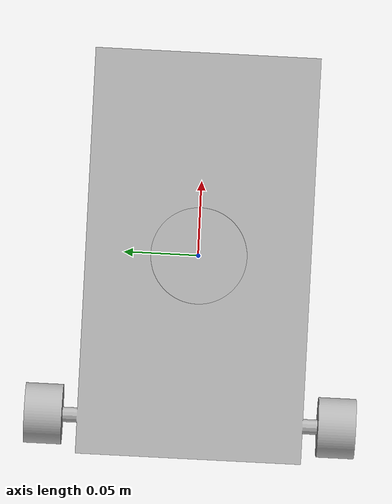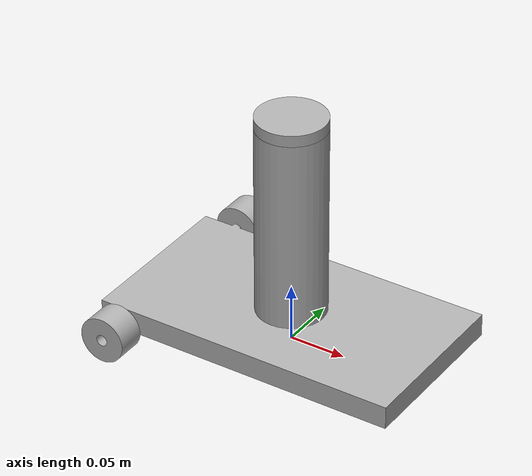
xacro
<?xml version="1.0" ?>
<robot name="singbot" xmlns:xacro="http://www.ros.org/wiki/xacro">

<xacro:include filename="$(find singbot_description)/urdf/materials.xacro" />
<xacro:include filename="$(find singbot_description)/urdf/singbot.trans" />
<xacro:include filename="$(find singbot_description)/urdf/singbot.gazebo" />
<link name="base_link">
  <inertial>
    <origin xyz="-0.00013371226325704471 0.0 0.055336504479511175" rpy="0 0 0"/>
    <mass value="10.144040607759354"/>
    <inertia ixx="0.043536" iyy="0.070312" izz="0.052476" ixy="0.0" iyz="0.0" ixz="-4.8e-05"/>
  </inertial>
  <visual>
    <origin xyz="0 0 0" rpy="0 0 0"/>
    <geometry>
      <mesh filename="package://singbot_description/meshes/base_link.stl" scale="0.001 0.001 0.001"/>
    </geometry>
    <material name="silver"/>
  </visual>
  <collision>
    <origin xyz="0 0 0" rpy="0 0 0"/>
    <geometry>
      <mesh filename="package://singbot_description/meshes/base_link.stl" scale="0.001 0.001 0.001"/>
    </geometry>
  </collision>
</link>

<link name="right_wheel_1">
  <inertial>
    <origin xyz="-3.4888758548845544e-14 -0.012499999999999997 3.469446951953614e-18" rpy="0 0 0"/>
    <mass value="0.23120158435012308"/>
    <inertia ixx="3.7e-05" iyy="4.9e-05" izz="3.7e-05" ixy="0.0" iyz="-0.0" ixz="-0.0"/>
  </inertial>
  <visual>
    <origin xyz="0.11 0.085 -0.02" rpy="0 0 0"/>
    <geometry>
      <mesh filename="package://singbot_description/meshes/right_wheel_1.stl" scale="0.001 0.001 0.001"/>
    </geometry>
    <material name="silver"/>
  </visual>
  <collision>
    <origin xyz="0.11 0.085 -0.02" rpy="0 0 0"/>
    <geometry>
      <mesh filename="package://singbot_description/meshes/right_wheel_1.stl" scale="0.001 0.001 0.001"/>
    </geometry>
  </collision>
</link>

<link name="left_wheel_1">
  <inertial>
    <origin xyz="-3.4888758548845544e-14 0.012499999999999997 3.469446951953614e-18" rpy="0 0 0"/>
    <mass value="0.23120158435012308"/>
    <inertia ixx="3.7e-05" iyy="4.9e-05" izz="3.7e-05" ixy="-0.0" iyz="0.0" ixz="-0.0"/>
  </inertial>
  <visual>
    <origin xyz="0.11 -0.085 -0.02" rpy="0 0 0"/>
    <geometry>
      <mesh filename="package://singbot_description/meshes/left_wheel_1.stl" scale="0.001 0.001 0.001"/>
    </geometry>
    <material name="silver"/>
  </visual>
  <collision>
    <origin xyz="0.11 -0.085 -0.02" rpy="0 0 0"/>
    <geometry>
      <mesh filename="package://singbot_description/meshes/left_wheel_1.stl" scale="0.001 0.001 0.001"/>
    </geometry>
  </collision>
</link>

<link name="caster_1">
  <inertial>
    <origin xyz="-0.035 -9.27846377390412e-18 -0.0036755953484190335" rpy="0 0 0"/>
    <mass value="0.04508634682126225"/>
    <inertia ixx="3e-06" iyy="3e-06" izz="5e-06" ixy="-0.0" iyz="-0.0" ixz="-0.0"/>
  </inertial>
  <visual>
    <origin xyz="-0.135 -0.0 -0.01" rpy="0 0 0"/>
    <geometry>
      <mesh filename="package://singbot_description/meshes/caster_1.stl" scale="0.001 0.001 0.001"/>
    </geometry>
    <material name="silver"/>
  </visual>
  <collision>
    <origin xyz="-0.135 -0.0 -0.01" rpy="0 0 0"/>
    <geometry>
      <mesh filename="package://singbot_description/meshes/caster_1.stl" scale="0.001 0.001 0.001"/>
    </geometry>
  </collision>
</link>

<link name="lidar_1">
  <inertial>
    <origin xyz="5.026061718855929e-18 0.0 0.004999999999999977" rpy="0 0 0"/>
    <mass value="0.22195352097611878"/>
    <inertia ixx="5.2e-05" iyy="5.2e-05" izz="0.0001" ixy="0.0" iyz="0.0" ixz="0.0"/>
  </inertial>
  <visual>
    <origin xyz="-0.0 -0.0 -0.2" rpy="0 0 0"/>
    <geometry>
      <mesh filename="package://singbot_description/meshes/lidar_1.stl" scale="0.001 0.001 0.001"/>
    </geometry>
    <material name="silver"/>
  </visual>
  <collision>
    <origin xyz="-0.0 -0.0 -0.2" rpy="0 0 0"/>
    <geometry>
      <mesh filename="package://singbot_description/meshes/lidar_1.stl" scale="0.001 0.001 0.001"/>
    </geometry>
  </collision>
</link>

<joint name="Rev1" type="continuous">
  <origin xyz="-0.11 -0.085 0.02" rpy="0 0 0"/>
  <parent link="base_link"/>
  <child link="right_wheel_1"/>
  <axis xyz="0.0 -1.0 0.0"/>
</joint>

<joint name="Rev2" type="continuous">
  <origin xyz="-0.11 0.085 0.02" rpy="0 0 0"/>
  <parent link="base_link"/>
  <child link="left_wheel_1"/>
  <axis xyz="0.0 1.0 0.0"/>
</joint>

<joint name="Rigid3" type="fixed">
  <origin xyz="0.135 0.0 0.01" rpy="0 0 0"/>
  <parent link="base_link"/>
  <child link="caster_1"/>
</joint>

<joint name="Rigid4" type="fixed">
  <origin xyz="0.0 0.0 0.2" rpy="0 0 3.14"/>
  <parent link="base_link"/>
  <child link="lidar_1"/>
</joint>

</robot>

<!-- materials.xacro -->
<robot name="singbot" xmlns:xacro="http://www.ros.org/wiki/xacro" >

<material name="silver">
  <color rgba="0.700 0.700 0.700 1.000"/>
</material>

</robot>

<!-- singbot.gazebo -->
<robot name="singbot" xmlns:xacro="http://www.ros.org/wiki/xacro" >

<xacro:property name="body_color" value="Gazebo/Silver" />

<gazebo>
  <plugin name="control" filename="libgazebo_ros_control.so"/>
</gazebo>
<gazebo reference="base_link">
  <material>${body_color}</material>
  <mu1>0.2</mu1>
  <mu2>0.2</mu2>
  <selfCollide>true</selfCollide>
  <gravity>true</gravity>
</gazebo>

<gazebo reference="right_wheel_1">
  <material>${body_color}</material>
  <mu1>0.2</mu1>
  <mu2>0.2</mu2>
  <selfCollide>true</selfCollide>
</gazebo>

<gazebo reference="left_wheel_1">
  <material>${body_color}</material>
  <mu1>0.2</mu1>
  <mu2>0.2</mu2>
  <selfCollide>true</selfCollide>
</gazebo>

<gazebo reference="caster_1">
  <material>${body_color}</material>
  <mu1>0.2</mu1>
  <mu2>0.2</mu2>
  <selfCollide>true</selfCollide>
</gazebo>

<gazebo reference="lidar_1">
  <material>${body_color}</material>
  <mu1>0.2</mu1>
  <mu2>0.2</mu2>
  <selfCollide>true</selfCollide>
</gazebo>

</robot>
